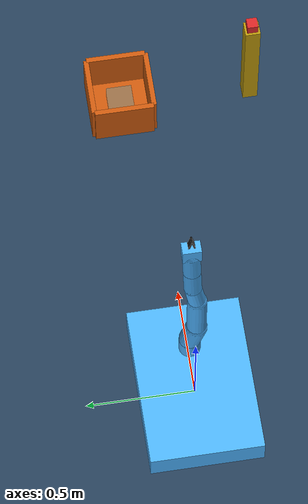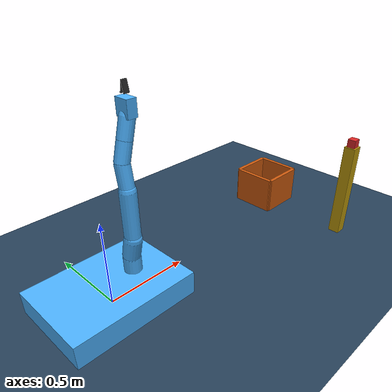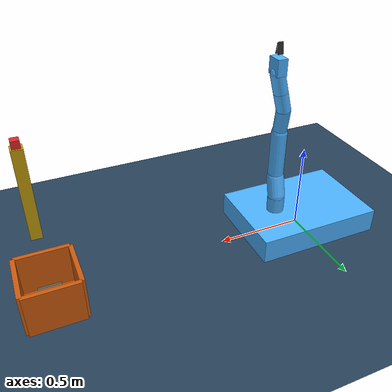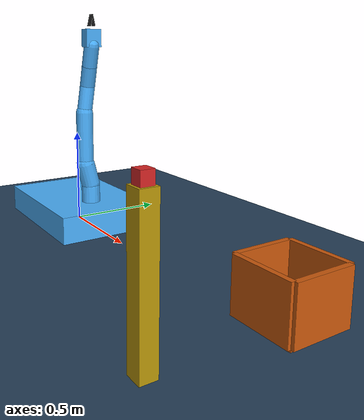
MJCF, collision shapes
<mujoco model="stick_and_box_right">
  <compiler meshdir="../robot_models/dinova" angle="radian" autolimits="true"/>
  <include file="../robot_models/dinova/dinova_robot.xml"/>

  <statistic center="1.1 -0.1 0.3" extent="2.6" meansize="0.05"/>
  <visual>
    <headlight diffuse="0.6 0.6 0.6" ambient="0.2 0.2 0.2" specular="0 0 0"/>
    <global azimuth="120" elevation="-20"/>
  </visual>
  <asset>
    <texture type="skybox" builtin="gradient" rgb1="0.3 0.5 0.7" rgb2="0 0 0" width="512" height="3072"/>
    <texture type="2d" name="groundplane" builtin="checker" mark="edge" rgb1="0.2 0.3 0.4"
      rgb2="0.1 0.2 0.3" markrgb="0.8 0.8 0.8" width="300" height="300"/>
    <material name="groundplane" texture="groundplane" texuniform="true" texrepeat="5 5"/>
  </asset>

  <worldbody>
    <light pos="1 0 2.5" directional="true"/>
    <geom name="floor" size="0 0 0.05" type="plane" material="groundplane"/>

    <geom name="box_floor" type="box" pos="1.5 0.12 0.01"   size="0.14 0.14 0.01"  rgba="0.8 0.35 0.05 1"/>
    <geom name="box_wb"    type="box" pos="1.5 -0.022 0.13" size="0.14 0.012 0.12" rgba="0.8 0.35 0.05 1"/>
    <geom name="box_wf"    type="box" pos="1.5 0.262 0.13"  size="0.14 0.012 0.12" rgba="0.8 0.35 0.05 1"/>
    <geom name="box_wl"    type="box" pos="1.642 0.12 0.13" size="0.012 0.14 0.12" rgba="0.8 0.35 0.05 1"/>
    <geom name="box_wr"    type="box" pos="1.358 0.12 0.13" size="0.012 0.14 0.12" rgba="0.8 0.35 0.05 1"/>
    <!-- goal marker (visual only): where the block should end up -->
    <geom name="goal_marker" type="box" pos="1.5 0.12 0.05" size="0.06 0.06 0.05"
          rgba="0 0.7 1 0.25" contype="0" conaffinity="0"/>

    <!-- free-standing stick (topples when pushed). Kept short so it topples reliably and
         delivers the block to the box border; the box is placed so the tip overshoots in. -->
    <body name="stick" pos="1.5 -0.5 0.30">
      <freejoint name="stick_joint"/>
      <geom name="stick_geom" type="box" size="0.035 0.035 0.30" rgba="0.74 0.6 0.04 1" mass="0.4"/>
    </body>

    <!-- block balanced on top of the stick -->
    <body name="block" pos="1.5 -0.5 0.625">
      <freejoint name="block_joint"/>
      <geom name="block_geom" type="box" size="0.025 0.025 0.025" rgba="0.85 0.15 0.15 1" mass="0.05"/>
    </body>
  </worldbody>
</mujoco>

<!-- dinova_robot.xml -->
<mujoco model="dinova">
  <compiler angle="radian" autolimits="true"/>

  <option integrator="implicitfast"/>
  <option cone="elliptic" impratio="10"/>

  <default>
    <default class="body">
      <geom material="body"/>
    </default>
    <default class="arm_large">
      <position kp="2000" kv="100"/>
    </default>
    <default class="arm_small">
      <position kp="500" kv="50"/>
    </default>
    <default class="finger">
      <!-- hinge: 0 = closed (tips together), +0.5 rad = open -->
      <joint type="hinge" armature="0.01" damping="0.1" range="0 0.5"/>
    </default>
    <default class="pad">
      <!-- inner gripping pad: collides (group 3), high friction, soft contact -->
      <geom type="box" group="3" friction="2 0.05 0.001" solimp="0.95 0.99 0.001"
        solref="0.004 1" priority="1" rgba="0.15 0.15 0.15 1"/>
    </default>
    <!-- Rendered shells: the detailed STL meshes (group 2). contype/conaffinity 0 — the
         real robot collisions are the simplified primitives below (sim.py also disables all
         mesh collision). -->
    <default class="visual">
      <geom group="2" contype="0" conaffinity="0"/>
    </default>
    <default class="collision">
      <geom group="4" type="capsule" rgba="0.3 0.7 1 0.4"/>
    </default>
    <site size="0.005" rgba="0.5 0.5 0.5 0.3" group="5"/>
  </default>

  <asset>
    <!-- Arm material/texture -->
    <texture name="body" type="cube" builtin="flat" mark="cross" width="127" height="1278"
      rgb1="0.9 0.9 0.9" rgb2="1 1 1" markrgb="0.8 0.8 0.8" random="0.01"/>
    <material name="body" texture="body" texuniform="true" rgba="0.8 0.8 0.8 1"/>
    <material name="chassis_mat" rgba="0.25 0.25 0.27 1"/>
    <material name="wheel_mat" rgba="0.08 0.08 0.08 1"/>

    <!-- Dingo base meshes -->
    <mesh name="omni_chassis_collision" file="clearpath/omni_chassis_collision.stl"/>
    <mesh name="mecanum_wheel" file="clearpath/mecanum_wheel.stl"/>

    <!-- Kinova Gen3 Lite meshes -->
    <mesh name="BASE" file="kinova/BASE.STL"/>
    <mesh name="SHOULDER" file="kinova/SHOULDER.STL"/>
    <mesh name="ARM" file="kinova/ARM.STL"/>
    <mesh name="FOREARM" file="kinova/FOREARM.STL"/>
    <mesh name="LOWER_WRIST" file="kinova/LOWER_WRIST.STL"/>
    <mesh name="UPPER_WRIST" file="kinova/UPPER_WRIST.STL"/>
    <mesh name="GRIPPER_FRAME" file="kinova/GRIPPER_FRAME.STL"/>
    <mesh name="RIGHT_FINGER_PROX" file="kinova/RIGHT_FINGER_PROX.STL"/>
    <mesh name="RIGHT_FINGER_DIST" file="kinova/RIGHT_FINGER_DIST.STL"/>
    <mesh name="LEFT_FINGER_PROX" file="kinova/LEFT_FINGER_PROX.STL"/>
    <mesh name="LEFT_FINGER_DIST" file="kinova/LEFT_FINGER_DIST.STL"/>
  </asset>

  <worldbody>
    <body name="base_link">
      <inertial pos="0 0 0.05" mass="60" diaginertia="2 2 2"/>
      <joint name="joint_x" type="slide" axis="1 0 0"/>
      <joint name="joint_y" type="slide" axis="0 1 0"/>
      <joint name="joint_th"/>

      <!-- Dingo chassis + mecanum wheels (rendered meshes; base is holonomic) -->
      <geom class="visual" type="mesh" mesh="omni_chassis_collision" pos="0 0 0.02" material="chassis_mat"/>
      <geom class="visual" type="mesh" mesh="mecanum_wheel" pos="0.35 0.22 0.05" quat="0 0 0 1" material="wheel_mat"/>
      <geom class="visual" type="mesh" mesh="mecanum_wheel" pos="0.35 -0.22 0.05" material="wheel_mat"/>
      <geom class="visual" type="mesh" mesh="mecanum_wheel" pos="-0.35 0.22 0.05" quat="0 0 0 1" material="wheel_mat"/>
      <geom class="visual" type="mesh" mesh="mecanum_wheel" pos="-0.35 -0.22 0.05" material="wheel_mat"/>

      <!-- Collision proxy: the whole mobile base (chassis + wheels) as one box -->
      <geom class="collision" type="box" pos="0 0 0.07" size="0.37 0.26 0.07"/>

      <!-- Base camera, mounted forward-up looking down at the workspace -->
      <camera name="base" pos="0.25 0 0.45" euler="0 -0.7853981634 -1.5707963268"
        fovy="52.23384539951277" resolution="640 360"/>

      <!-- Kinova Gen3 Lite arm, mounted on the base -->
      <body name="gen3/base_link" pos="0.160 0 0.11" quat="1 0 0 0" childclass="body">
        <inertial pos="0.00244324 0.00015573 0.0861674" quat="0.999765 -0.000276221 0.0211882 0.00451385"
          mass="1.14608" diaginertia="0.0033632 0.003311 0.000766919"/>
        <geom class="visual" type="mesh" mesh="BASE"/>
        <geom class="collision" fromto="0 0 0.02 0 0 0.115" size="0.05"/>
        <body name="SHOULDER" pos="0 0 0.12825">
          <inertial pos="-2.477e-05 -0.0221353 0.0993769" quat="0.972429 -0.233194 -0.000430944 -0.00108761"
            mass="0.959744" diaginertia="0.00165947 0.00158128 0.000717195"/>
          <joint name="Kinova_0" pos="0 0 0" axis="0 0 1" range="-2.76 2.76" frictionloss="0.2" armature="0.1"/>
          <geom class="visual" type="mesh" mesh="SHOULDER"/>
          <geom class="collision" fromto="0 0 0 0 -0.03 0.115" size="0.05"/>
          <body name="ARM" pos="0 -0.03 0.115" quat="0.707105 0.707108 0 0">
            <inertial pos="0 0.211548 0.0453031" quat="0.46336 0.529706 -0.534676 0.467794"
              mass="1.17756" diaginertia="0.0115237 0.0114928 0.000839712"/>
            <joint name="Kinova_1" pos="0 0 0" axis="0 0 1" range="-2.76 2.76" frictionloss="0.2" armature="0.1"/>
            <geom class="visual" type="mesh" mesh="ARM"/>
            <geom class="collision" fromto="0 0 0 0 0.28 0" size="0.045"/>
            <body name="FOREARM" pos="0 0.28 0" quat="-3.67321e-06 -1 0 0">
              <inertial pos="0 -0.0950221 -0.0073555" quat="0.50997 0.473675 -0.49139 0.523543"
                mass="0.597677" diaginertia="0.00169754 0.00163253 0.000291376"/>
              <joint name="Kinova_2" pos="0 0 0" axis="0 0 1" range="-2.76 2.76" frictionloss="0.2" armature="0.1"/>
              <geom class="visual" type="mesh" mesh="FOREARM"/>
              <geom class="collision" fromto="0 0 0 0 -0.14 0.02" size="0.04"/>
              <body name="LOWER_WRIST" pos="0 -0.14 0.02" quat="0.707105 0.707108 0 0">
                <inertial pos="0.00575149 0 0.0871921" quat="0.693187 0.143495 0.142688 0.691767"
                  mass="0.526934" diaginertia="0.000785191 0.000756407 0.000275722"/>
                <joint name="Kinova_3" pos="0 0 0" axis="0 0 1" range="-2.67 2.67" frictionloss="0.2" armature="0.05"/>
                <geom class="visual" type="mesh" mesh="LOWER_WRIST"/>
                <geom class="collision" fromto="0 0 0 0.0285 0 0.105" size="0.04"/>
                <body name="UPPER_WRIST" pos="0.0285 0 0.105" quat="0.707105 0 0.707108 0">
                  <inertial pos="-0.0805652 0 0.018728" quat="0.00372858 0.705925 -0.000605285 0.708276"
                    mass="0.580973" diaginertia="0.00108466 0.00106374 0.000212638"/>
                  <joint name="Kinova_4" pos="0 0 0" axis="0 0 1" range="-2.67 2.67" frictionloss="0.2" armature="0.03"/>
                  <geom class="visual" type="mesh" mesh="UPPER_WRIST"/>
                  <geom class="collision" fromto="0 0 0 -0.105 0 0.0285" size="0.04"/>
                  <body name="GRIPPER_FRAME" pos="-0.105 0 0.0285" quat="0.707105 0 -0.707108 0">
                    <inertial pos="9.74456e-07 7.47078e-06 0.0547856" quat="1 0.000127193 0.000353543 -0.00017847"
                      mass="0.197766" diaginertia="0.000265651 0.000216392 0.000133459"/>
                    <joint name="Kinova_5" pos="0 0 0" axis="0 0 1" range="-2.67 2.67" frictionloss="0.2" armature="0"/>
                    <geom class="visual" type="mesh" mesh="GRIPPER_FRAME"/>
                    <geom class="collision" type="box" pos="0 0 0.04" size="0.028 0.042 0.045"/>

                    <body name="right_finger" pos="0 -0.026 0.05">
                      <joint name="gripper_joint" class="finger" axis="1 0 0"/>
                      <geom class="visual" pos="0 -0.0045 0.020" quat="0.707105 0 0.707108 0" type="mesh" mesh="RIGHT_FINGER_PROX"/>
                      <geom class="visual" pos="0 0.016 0.0656" quat="0.707105 0 0.707108 0" type="mesh" mesh="RIGHT_FINGER_DIST"/>
                      <!-- no collision proxy on the fingers: the grasp pads (group 3) handle finger
                           contact; a finger box here would fight the pads during grasping. -->
                      <geom class="pad" name="right_pad" pos="0 0.020 0.08" size="0.015 0.003 0.03"
                        quat="0.9936 -0.1132 0 0"/>
                    </body>
                    <body name="left_finger" pos="0 0.026 0.05">
                      <joint name="left_finger_joint" class="finger" axis="-1 0 0"/>
                      <geom class="visual" pos="0 0.0045 0.020" quat="0.707105 0 0.707108 0" type="mesh" mesh="LEFT_FINGER_PROX"/>
                      <geom class="visual" pos="0 -0.016 0.0656" quat="0.707105 0 0.707108 0" type="mesh" mesh="LEFT_FINGER_DIST"/>
                      <!-- no collision proxy on the fingers (see right_finger) -->
                      <geom class="pad" name="left_pad" pos="0 -0.020 0.08" size="0.015 0.003 0.03"
                        quat="0.9936 0.1132 0 0"/>
                    </body>

                    <!-- Wrist camera, looking along the gripper approach axis (+z) -->
                    <camera name="wrist" pos="0 -0.06 0.04" euler="3.14159265 0 0"
                      fovy="50" resolution="640 480"/>
                    <site name="pinch_site" type="sphere" pos="0 0 0.14" size="0.01" rgba="0 0 1 1"/>
                  </body>
                </body>
              </body>
            </body>
          </body>
        </body>
      </body>
    </body>
  </worldbody>

  <equality>
    <!-- Couple both fingers so a single actuator opens/closes the gripper -->
    <joint joint1="left_finger_joint" joint2="gripper_joint" polycoef="0 1 0 0 0"/>
  </equality>

  <contact>
    <!-- Fingers don't collide with the gripper frame (only the pads grip) -->
    <exclude body1="GRIPPER_FRAME" body2="right_finger"/>
    <exclude body1="GRIPPER_FRAME" body2="left_finger"/>
    <!-- Adjacent-link exclusions so the collision proxy (group 4) doesn't self-collide on
         its overlapping capsules when enable_robot_collision is on -->
    <exclude body1="base_link" body2="gen3/base_link"/>
    <exclude body1="gen3/base_link" body2="SHOULDER"/>
    <exclude body1="SHOULDER" body2="ARM"/>
    <exclude body1="ARM" body2="FOREARM"/>
    <exclude body1="FOREARM" body2="LOWER_WRIST"/>
    <exclude body1="LOWER_WRIST" body2="UPPER_WRIST"/>
    <exclude body1="UPPER_WRIST" body2="GRIPPER_FRAME"/>
  </contact>

  <actuator>
    <!-- Holonomic base -->
    <position name="joint_x" joint="joint_x" kp="1000000" kv="50000"/>
    <position name="joint_y" joint="joint_y" kp="1000000" kv="50000"/>
    <position name="joint_th" joint="joint_th" kp="50000" kv="1000"/>

    <!-- Arm (position-controlled, gravity compensated at runtime) -->
    <position class="arm_large" name="Kinova_0" joint="Kinova_0"/>
    <position class="arm_large" name="Kinova_1" joint="Kinova_1"/>
    <position class="arm_large" name="Kinova_2" joint="Kinova_2"/>
    <position class="arm_small" name="Kinova_3" joint="Kinova_3"/>
    <position class="arm_small" name="Kinova_4" joint="Kinova_4"/>
    <position class="arm_small" name="Kinova_5" joint="Kinova_5"/>

    <!-- Gripper: ctrl is hinge angle (rad), 0 = closed, 0.5 = open -->
    <position name="gripper_actuator" joint="gripper_joint" kp="20" kv="2" ctrlrange="0 0.5"/>
  </actuator>
</mujoco>
